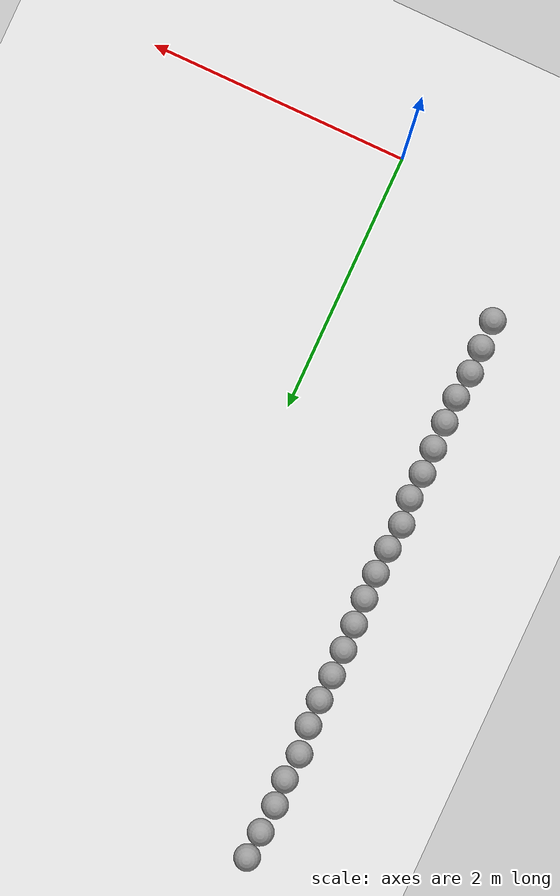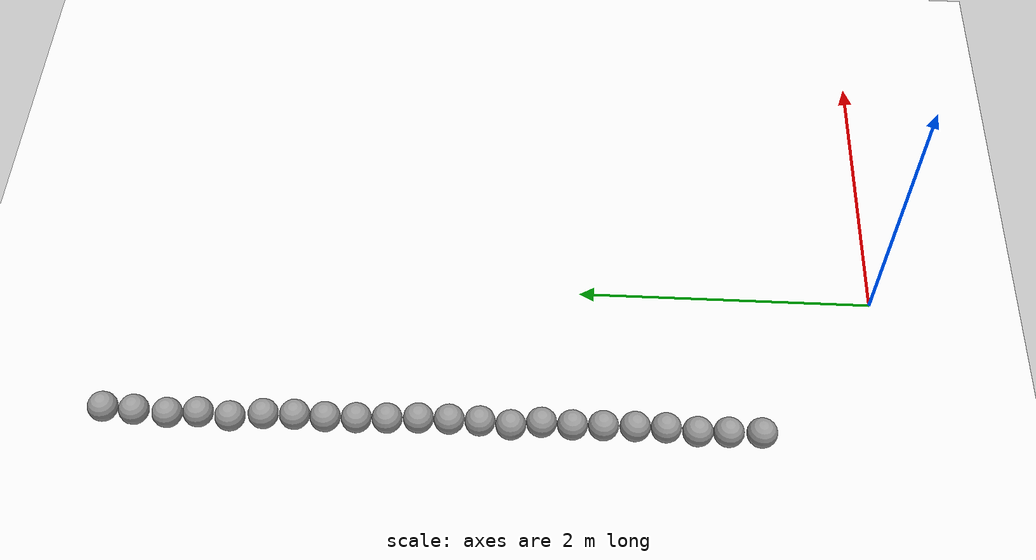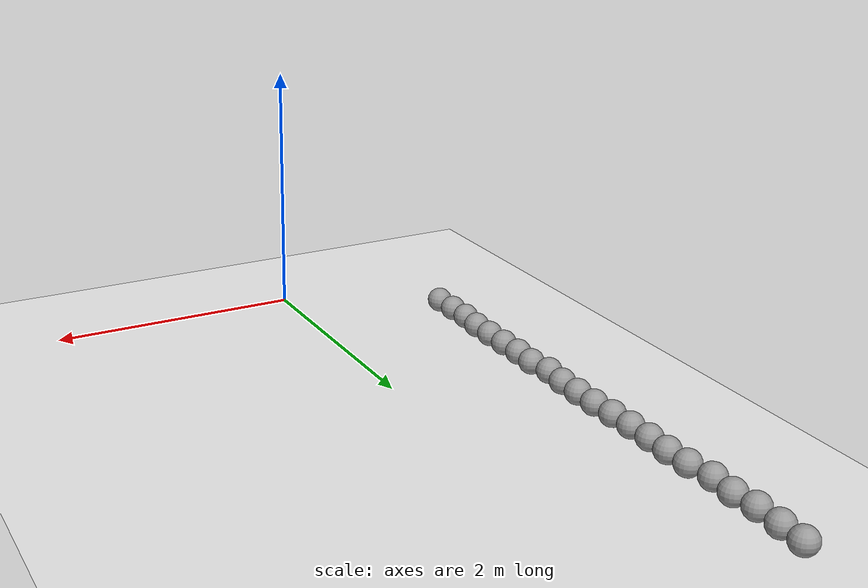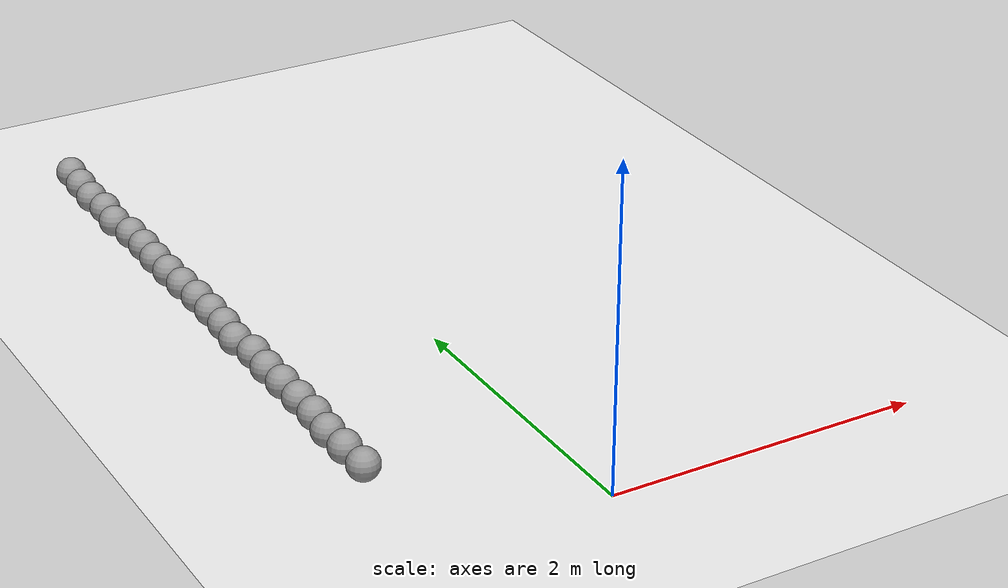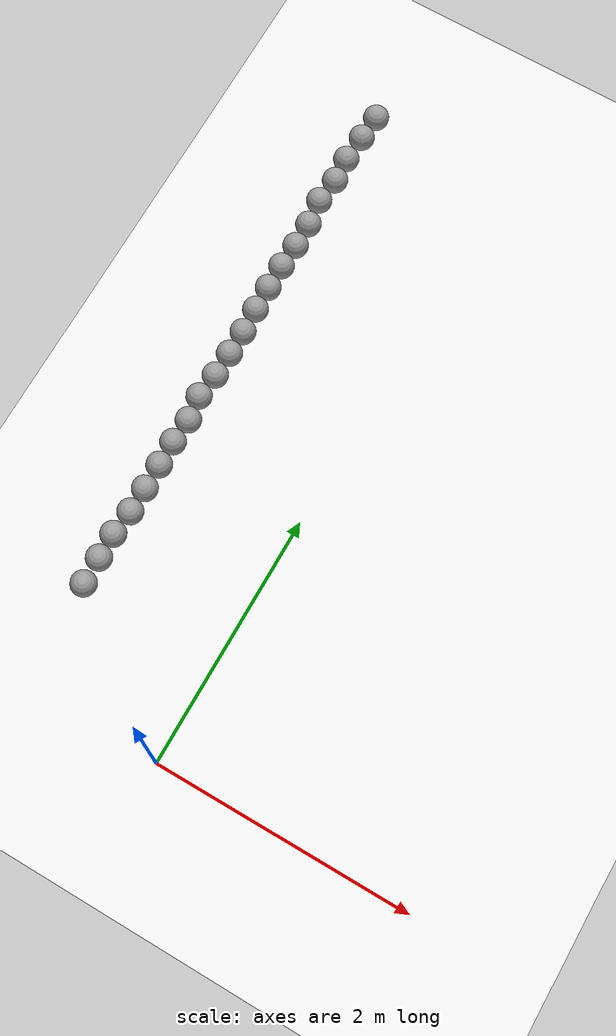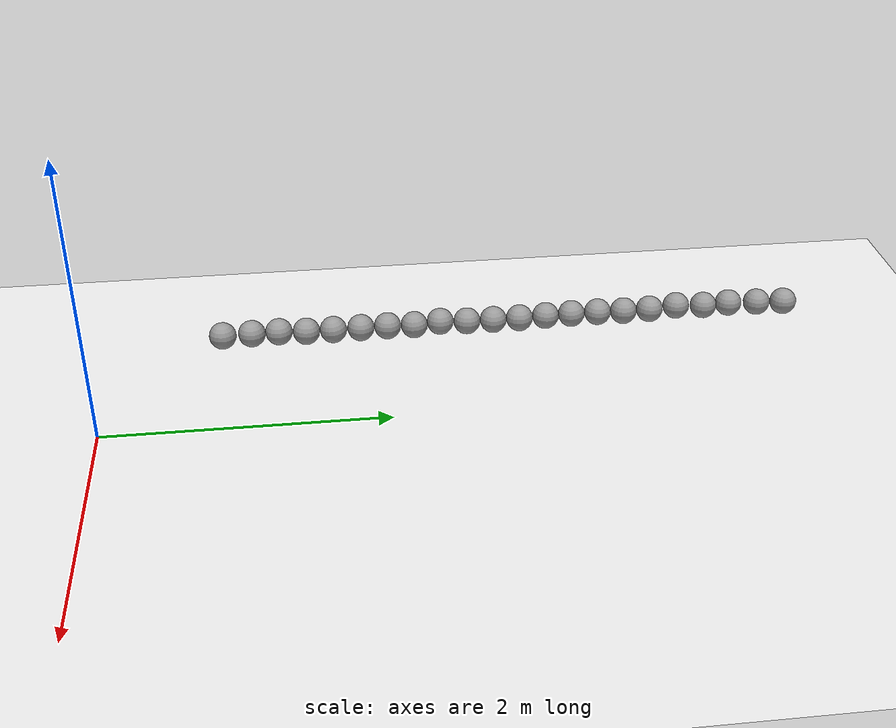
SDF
<sdf version="1.7">
 <world name="default">
  <model name="ground_plane">
   <static>1</static>
   <link name="link">
    <collision name="collision">
     <geometry><plane><normal>0 0 1</normal><size>100 100</size></plane></geometry>
     <surface>
      <contact><collide_bitmask>65535</collide_bitmask></contact>
      <friction><ode><mu>100</mu><mu2>50</mu2></ode></friction>
     </surface>
    </collision>
    <visual name="visual">
     <cast_shadows>0</cast_shadows>
     <geometry><plane><normal>0 0 1</normal><size>100 100</size></plane></geometry>
     <material>
      <script><uri>file://media/materials/scripts/gazebo.material</uri><name>Gazebo/White</name></script>
     </material>
    </visual>
   </link>
  </model>
  <model name="sphere_3">
   <link name="link_0">
    <inertial>
     <mass>1</mass>
     <inertia><ixx>0.1</ixx><ixy>0</ixy><ixz>0</ixz><iyy>0.1</iyy><iyz>0</iyz><izz>0.1</izz></inertia>
    </inertial>
    <visual name="visual">
     <geometry><sphere><radius>0.1</radius></sphere></geometry>
     <material>
      <lighting>1</lighting>
      <script><uri>file://media/materials/scripts/gazebo.material</uri><name>Gazebo/Grey</name></script>
      <shader type="pixel"><normal_map>__default__</normal_map></shader>
      <ambient>0.3 0.3 0.3 1</ambient>
      <diffuse>0.7 0.7 0.7 1</diffuse>
      <specular>0.01 0.01 0.01 1</specular>
      <emissive>0 0 0 1</emissive>
     </material>
    </visual>
    <collision name="collision">
     <geometry><sphere><radius>0.1</radius></sphere></geometry>
     <surface>
      <friction>
       <ode><mu>1</mu><mu2>1</mu2><fdir1>0 0 0</fdir1><slip1>0</slip1><slip2>0</slip2></ode>
       <torsional>
        <coefficient>1</coefficient>
        <patch_radius>0</patch_radius>
        <surface_radius>0</surface_radius>
        <use_patch_radius>1</use_patch_radius>
        <ode><slip>0</slip></ode>
       </torsional>
      </friction>
      <bounce><restitution_coefficient>0</restitution_coefficient><threshold>1e+06</threshold></bounce>
      <contact>
       <collide_without_contact>0</collide_without_contact>
       <collide_without_contact_bitmask>1</collide_without_contact_bitmask>
       <collide_bitmask>1</collide_bitmask>
       <ode>
        <soft_cfm>0</soft_cfm>
        <soft_erp>0.2</soft_erp>
        <kp>1e+13</kp>
        <kd>1</kd>
        <max_vel>0.01</max_vel>
        <min_depth>0</min_depth>
       </ode>
       <bullet>
        <split_impulse>1</split_impulse>
        <split_impulse_penetration_threshold>-0.01</split_impulse_penetration_threshold>
        <soft_cfm>0</soft_cfm>
        <soft_erp>0.2</soft_erp>
        <kp>1e+13</kp>
        <kd>1</kd>
       </bullet>
      </contact>
     </surface>
    </collision>
   </link>
   <static>0</static>
   <pose>-1.0912 0.811371 0.1 0 -0 0</pose>
  </model>
  <model name="sphere_4">
   <link name="link_0">
    <inertial>
     <mass>1</mass>
     <inertia><ixx>0.1</ixx><ixy>0</ixy><ixz>0</ixz><iyy>0.1</iyy><iyz>0</iyz><izz>0.1</izz></inertia>
    </inertial>
    <visual name="visual">
     <geometry><sphere><radius>0.1</radius></sphere></geometry>
     <material>
      <lighting>1</lighting>
      <script><uri>file://media/materials/scripts/gazebo.material</uri><name>Gazebo/Grey</name></script>
      <shader type="pixel"><normal_map>__default__</normal_map></shader>
      <ambient>0.3 0.3 0.3 1</ambient>
      <diffuse>0.7 0.7 0.7 1</diffuse>
      <specular>0.01 0.01 0.01 1</specular>
      <emissive>0 0 0 1</emissive>
     </material>
    </visual>
    <collision name="collision">
     <geometry><sphere><radius>0.1</radius></sphere></geometry>
     <surface>
      <friction>
       <ode><mu>1</mu><mu2>1</mu2><fdir1>0 0 0</fdir1><slip1>0</slip1><slip2>0</slip2></ode>
       <torsional>
        <coefficient>1</coefficient>
        <patch_radius>0</patch_radius>
        <surface_radius>0</surface_radius>
        <use_patch_radius>1</use_patch_radius>
        <ode><slip>0</slip></ode>
       </torsional>
      </friction>
      <bounce><restitution_coefficient>0</restitution_coefficient><threshold>1e+06</threshold></bounce>
      <contact>
       <collide_without_contact>0</collide_without_contact>
       <collide_without_contact_bitmask>1</collide_without_contact_bitmask>
       <collide_bitmask>1</collide_bitmask>
       <ode>
        <soft_cfm>0</soft_cfm>
        <soft_erp>0.2</soft_erp>
        <kp>1e+13</kp>
        <kd>1</kd>
        <max_vel>0.01</max_vel>
        <min_depth>0</min_depth>
       </ode>
       <bullet>
        <split_impulse>1</split_impulse>
        <split_impulse_penetration_threshold>-0.01</split_impulse_penetration_threshold>
        <soft_cfm>0</soft_cfm>
        <soft_erp>0.2</soft_erp>
        <kp>1e+13</kp>
        <kd>1</kd>
       </bullet>
      </contact>
     </surface>
    </collision>
   </link>
   <static>0</static>
   <pose>-1.09687 1.02525 0.1 0.000955 -0.000196 0.000241</pose>
  </model>
  <model name="sphere_5">
   <link name="link_0">
    <inertial>
     <mass>1</mass>
     <inertia><ixx>0.1</ixx><ixy>0</ixy><ixz>0</ixz><iyy>0.1</iyy><iyz>0</iyz><izz>0.1</izz></inertia>
    </inertial>
    <visual name="visual">
     <geometry><sphere><radius>0.1</radius></sphere></geometry>
     <material>
      <lighting>1</lighting>
      <script><uri>file://media/materials/scripts/gazebo.material</uri><name>Gazebo/Grey</name></script>
      <shader type="pixel"><normal_map>__default__</normal_map></shader>
      <ambient>0.3 0.3 0.3 1</ambient>
      <diffuse>0.7 0.7 0.7 1</diffuse>
      <specular>0.01 0.01 0.01 1</specular>
      <emissive>0 0 0 1</emissive>
     </material>
    </visual>
    <collision name="collision">
     <geometry><sphere><radius>0.1</radius></sphere></geometry>
     <surface>
      <friction>
       <ode><mu>1</mu><mu2>1</mu2><fdir1>0 0 0</fdir1><slip1>0</slip1><slip2>0</slip2></ode>
       <torsional>
        <coefficient>1</coefficient>
        <patch_radius>0</patch_radius>
        <surface_radius>0</surface_radius>
        <use_patch_radius>1</use_patch_radius>
        <ode><slip>0</slip></ode>
       </torsional>
      </friction>
      <bounce><restitution_coefficient>0</restitution_coefficient><threshold>1e+06</threshold></bounce>
      <contact>
       <collide_without_contact>0</collide_without_contact>
       <collide_without_contact_bitmask>1</collide_without_contact_bitmask>
       <collide_bitmask>1</collide_bitmask>
       <ode>
        <soft_cfm>0</soft_cfm>
        <soft_erp>0.2</soft_erp>
        <kp>1e+13</kp>
        <kd>1</kd>
        <max_vel>0.01</max_vel>
        <min_depth>0</min_depth>
       </ode>
       <bullet>
        <split_impulse>1</split_impulse>
        <split_impulse_penetration_threshold>-0.01</split_impulse_penetration_threshold>
        <soft_cfm>0</soft_cfm>
        <soft_erp>0.2</soft_erp>
        <kp>1e+13</kp>
        <kd>1</kd>
       </bullet>
      </contact>
     </surface>
    </collision>
   </link>
   <static>0</static>
   <pose>-1.10184 1.22526 0.1 0.026409 -0.003889 0.001047</pose>
  </model>
  <model name="sphere_6">
   <link name="link_0">
    <inertial>
     <mass>1</mass>
     <inertia><ixx>0.1</ixx><ixy>0</ixy><ixz>0</ixz><iyy>0.1</iyy><iyz>0</iyz><izz>0.1</izz></inertia>
    </inertial>
    <visual name="visual">
     <geometry><sphere><radius>0.1</radius></sphere></geometry>
     <material>
      <lighting>1</lighting>
      <script><uri>file://media/materials/scripts/gazebo.material</uri><name>Gazebo/Grey</name></script>
      <shader type="pixel"><normal_map>__default__</normal_map></shader>
      <ambient>0.3 0.3 0.3 1</ambient>
      <diffuse>0.7 0.7 0.7 1</diffuse>
      <specular>0.01 0.01 0.01 1</specular>
      <emissive>0 0 0 1</emissive>
     </material>
    </visual>
    <collision name="collision">
     <geometry><sphere><radius>0.1</radius></sphere></geometry>
     <surface>
      <friction>
       <ode><mu>1</mu><mu2>1</mu2><fdir1>0 0 0</fdir1><slip1>0</slip1><slip2>0</slip2></ode>
       <torsional>
        <coefficient>1</coefficient>
        <patch_radius>0</patch_radius>
        <surface_radius>0</surface_radius>
        <use_patch_radius>1</use_patch_radius>
        <ode><slip>0</slip></ode>
       </torsional>
      </friction>
      <bounce><restitution_coefficient>0</restitution_coefficient><threshold>1e+06</threshold></bounce>
      <contact>
       <collide_without_contact>0</collide_without_contact>
       <collide_without_contact_bitmask>1</collide_without_contact_bitmask>
       <collide_bitmask>1</collide_bitmask>
       <ode>
        <soft_cfm>0</soft_cfm>
        <soft_erp>0.2</soft_erp>
        <kp>1e+13</kp>
        <kd>1</kd>
        <max_vel>0.01</max_vel>
        <min_depth>0</min_depth>
       </ode>
       <bullet>
        <split_impulse>1</split_impulse>
        <split_impulse_penetration_threshold>-0.01</split_impulse_penetration_threshold>
        <soft_cfm>0</soft_cfm>
        <soft_erp>0.2</soft_erp>
        <kp>1e+13</kp>
        <kd>1</kd>
       </bullet>
      </contact>
     </surface>
    </collision>
   </link>
   <static>0</static>
   <pose>-1.08366 1.42822 0.1 -0.035577 0.004267 0.000847</pose>
  </model>
  <model name="sphere_7">
   <link name="link_0">
    <inertial>
     <mass>1</mass>
     <inertia><ixx>0.1</ixx><ixy>0</ixy><ixz>0</ixz><iyy>0.1</iyy><iyz>0</iyz><izz>0.1</izz></inertia>
    </inertial>
    <visual name="visual">
     <geometry><sphere><radius>0.1</radius></sphere></geometry>
     <material>
      <lighting>1</lighting>
      <script><uri>file://media/materials/scripts/gazebo.material</uri><name>Gazebo/Grey</name></script>
      <shader type="pixel"><normal_map>__default__</normal_map></shader>
      <ambient>0.3 0.3 0.3 1</ambient>
      <diffuse>0.7 0.7 0.7 1</diffuse>
      <specular>0.01 0.01 0.01 1</specular>
      <emissive>0 0 0 1</emissive>
     </material>
    </visual>
    <collision name="collision">
     <geometry><sphere><radius>0.1</radius></sphere></geometry>
     <surface>
      <friction>
       <ode><mu>1</mu><mu2>1</mu2><fdir1>0 0 0</fdir1><slip1>0</slip1><slip2>0</slip2></ode>
       <torsional>
        <coefficient>1</coefficient>
        <patch_radius>0</patch_radius>
        <surface_radius>0</surface_radius>
        <use_patch_radius>1</use_patch_radius>
        <ode><slip>0</slip></ode>
       </torsional>
      </friction>
      <bounce><restitution_coefficient>0</restitution_coefficient><threshold>1e+06</threshold></bounce>
      <contact>
       <collide_without_contact>0</collide_without_contact>
       <collide_without_contact_bitmask>1</collide_without_contact_bitmask>
       <collide_bitmask>1</collide_bitmask>
       <ode>
        <soft_cfm>0</soft_cfm>
        <soft_erp>0.2</soft_erp>
        <kp>1e+13</kp>
        <kd>1</kd>
        <max_vel>0.01</max_vel>
        <min_depth>0</min_depth>
       </ode>
       <bullet>
        <split_impulse>1</split_impulse>
        <split_impulse_penetration_threshold>-0.01</split_impulse_penetration_threshold>
        <soft_cfm>0</soft_cfm>
        <soft_erp>0.2</soft_erp>
        <kp>1e+13</kp>
        <kd>1</kd>
       </bullet>
      </contact>
     </surface>
    </collision>
   </link>
   <static>0</static>
   <pose>-1.08447 1.62822 0.1 0.105529 0.002076 0.000151</pose>
  </model>
  <model name="sphere_13">
   <link name="link_0">
    <inertial>
     <mass>1</mass>
     <inertia><ixx>0.1</ixx><ixy>0</ixy><ixz>0</ixz><iyy>0.1</iyy><iyz>0</iyz><izz>0.1</izz></inertia>
    </inertial>
    <visual name="visual">
     <geometry><sphere><radius>0.1</radius></sphere></geometry>
     <material>
      <lighting>1</lighting>
      <script><uri>file://media/materials/scripts/gazebo.material</uri><name>Gazebo/Grey</name></script>
      <shader type="pixel"><normal_map>__default__</normal_map></shader>
      <ambient>0.3 0.3 0.3 1</ambient>
      <diffuse>0.7 0.7 0.7 1</diffuse>
      <specular>0.01 0.01 0.01 1</specular>
      <emissive>0 0 0 1</emissive>
     </material>
    </visual>
    <collision name="collision">
     <geometry><sphere><radius>0.1</radius></sphere></geometry>
     <surface>
      <friction>
       <ode><mu>1</mu><mu2>1</mu2><fdir1>0 0 0</fdir1><slip1>0</slip1><slip2>0</slip2></ode>
       <torsional>
        <coefficient>1</coefficient>
        <patch_radius>0</patch_radius>
        <surface_radius>0</surface_radius>
        <use_patch_radius>1</use_patch_radius>
        <ode><slip>0</slip></ode>
       </torsional>
      </friction>
      <bounce><restitution_coefficient>0</restitution_coefficient><threshold>1e+06</threshold></bounce>
      <contact>
       <collide_without_contact>0</collide_without_contact>
       <collide_without_contact_bitmask>1</collide_without_contact_bitmask>
       <collide_bitmask>1</collide_bitmask>
       <ode>
        <soft_cfm>0</soft_cfm>
        <soft_erp>0.2</soft_erp>
        <kp>1e+13</kp>
        <kd>1</kd>
        <max_vel>0.01</max_vel>
        <min_depth>0</min_depth>
       </ode>
       <bullet>
        <split_impulse>1</split_impulse>
        <split_impulse_penetration_threshold>-0.01</split_impulse_penetration_threshold>
        <soft_cfm>0</soft_cfm>
        <soft_erp>0.2</soft_erp>
        <kp>1e+13</kp>
        <kd>1</kd>
       </bullet>
      </contact>
     </surface>
    </collision>
   </link>
   <static>0</static>
   <pose>-1.08795 1.8335 0.1 -0.013985 -0.000756 0.00343</pose>
  </model>
  <model name="sphere_14">
   <link name="link_0">
    <inertial>
     <mass>1</mass>
     <inertia><ixx>0.1</ixx><ixy>0</ixy><ixz>0</ixz><iyy>0.1</iyy><iyz>0</iyz><izz>0.1</izz></inertia>
    </inertial>
    <visual name="visual">
     <geometry><sphere><radius>0.1</radius></sphere></geometry>
     <material>
      <lighting>1</lighting>
      <script><uri>file://media/materials/scripts/gazebo.material</uri><name>Gazebo/Grey</name></script>
      <shader type="pixel"><normal_map>__default__</normal_map></shader>
      <ambient>0.3 0.3 0.3 1</ambient>
      <diffuse>0.7 0.7 0.7 1</diffuse>
      <specular>0.01 0.01 0.01 1</specular>
      <emissive>0 0 0 1</emissive>
     </material>
    </visual>
    <collision name="collision">
     <geometry><sphere><radius>0.1</radius></sphere></geometry>
     <surface>
      <friction>
       <ode><mu>1</mu><mu2>1</mu2><fdir1>0 0 0</fdir1><slip1>0</slip1><slip2>0</slip2></ode>
       <torsional>
        <coefficient>1</coefficient>
        <patch_radius>0</patch_radius>
        <surface_radius>0</surface_radius>
        <use_patch_radius>1</use_patch_radius>
        <ode><slip>0</slip></ode>
       </torsional>
      </friction>
      <bounce><restitution_coefficient>0</restitution_coefficient><threshold>1e+06</threshold></bounce>
      <contact>
       <collide_without_contact>0</collide_without_contact>
       <collide_without_contact_bitmask>1</collide_without_contact_bitmask>
       <collide_bitmask>1</collide_bitmask>
       <ode>
        <soft_cfm>0</soft_cfm>
        <soft_erp>0.2</soft_erp>
        <kp>1e+13</kp>
        <kd>1</kd>
        <max_vel>0.01</max_vel>
        <min_depth>0</min_depth>
       </ode>
       <bullet>
        <split_impulse>1</split_impulse>
        <split_impulse_penetration_threshold>-0.01</split_impulse_penetration_threshold>
        <soft_cfm>0</soft_cfm>
        <soft_erp>0.2</soft_erp>
        <kp>1e+13</kp>
        <kd>1</kd>
       </bullet>
      </contact>
     </surface>
    </collision>
   </link>
   <static>0</static>
   <pose>-1.09217 2.0335 0.1 -0.017404 0.006908 -0.012333</pose>
  </model>
  <model name="sphere_15">
   <link name="link_0">
    <inertial>
     <mass>1</mass>
     <inertia><ixx>0.1</ixx><ixy>0</ixy><ixz>0</ixz><iyy>0.1</iyy><iyz>0</iyz><izz>0.1</izz></inertia>
    </inertial>
    <visual name="visual">
     <geometry><sphere><radius>0.1</radius></sphere></geometry>
     <material>
      <lighting>1</lighting>
      <script><uri>file://media/materials/scripts/gazebo.material</uri><name>Gazebo/Grey</name></script>
      <shader type="pixel"><normal_map>__default__</normal_map></shader>
      <ambient>0.3 0.3 0.3 1</ambient>
      <diffuse>0.7 0.7 0.7 1</diffuse>
      <specular>0.01 0.01 0.01 1</specular>
      <emissive>0 0 0 1</emissive>
     </material>
    </visual>
    <collision name="collision">
     <geometry><sphere><radius>0.1</radius></sphere></geometry>
     <surface>
      <friction>
       <ode><mu>1</mu><mu2>1</mu2><fdir1>0 0 0</fdir1><slip1>0</slip1><slip2>0</slip2></ode>
       <torsional>
        <coefficient>1</coefficient>
        <patch_radius>0</patch_radius>
        <surface_radius>0</surface_radius>
        <use_patch_radius>1</use_patch_radius>
        <ode><slip>0</slip></ode>
       </torsional>
      </friction>
      <bounce><restitution_coefficient>0</restitution_coefficient><threshold>1e+06</threshold></bounce>
      <contact>
       <collide_without_contact>0</collide_without_contact>
       <collide_without_contact_bitmask>1</collide_without_contact_bitmask>
       <collide_bitmask>1</collide_bitmask>
       <ode>
        <soft_cfm>0</soft_cfm>
        <soft_erp>0.2</soft_erp>
        <kp>1e+13</kp>
        <kd>1</kd>
        <max_vel>0.01</max_vel>
        <min_depth>0</min_depth>
       </ode>
       <bullet>
        <split_impulse>1</split_impulse>
        <split_impulse_penetration_threshold>-0.01</split_impulse_penetration_threshold>
        <soft_cfm>0</soft_cfm>
        <soft_erp>0.2</soft_erp>
        <kp>1e+13</kp>
        <kd>1</kd>
       </bullet>
      </contact>
     </surface>
    </collision>
   </link>
   <static>0</static>
   <pose>-1.083 2.23368 0.1 0.041311 -0.006088 0.058383</pose>
  </model>
  <model name="sphere_16">
   <link name="link_0">
    <inertial>
     <mass>1</mass>
     <inertia><ixx>0.1</ixx><ixy>0</ixy><ixz>0</ixz><iyy>0.1</iyy><iyz>0</iyz><izz>0.1</izz></inertia>
    </inertial>
    <visual name="visual">
     <geometry><sphere><radius>0.1</radius></sphere></geometry>
     <material>
      <lighting>1</lighting>
      <script><uri>file://media/materials/scripts/gazebo.material</uri><name>Gazebo/Grey</name></script>
      <shader type="pixel"><normal_map>__default__</normal_map></shader>
      <ambient>0.3 0.3 0.3 1</ambient>
      <diffuse>0.7 0.7 0.7 1</diffuse>
      <specular>0.01 0.01 0.01 1</specular>
      <emissive>0 0 0 1</emissive>
     </material>
    </visual>
    <collision name="collision">
     <geometry><sphere><radius>0.1</radius></sphere></geometry>
     <surface>
      <friction>
       <ode><mu>1</mu><mu2>1</mu2><fdir1>0 0 0</fdir1><slip1>0</slip1><slip2>0</slip2></ode>
       <torsional>
        <coefficient>1</coefficient>
        <patch_radius>0</patch_radius>
        <surface_radius>0</surface_radius>
        <use_patch_radius>1</use_patch_radius>
        <ode><slip>0</slip></ode>
       </torsional>
      </friction>
      <bounce><restitution_coefficient>0</restitution_coefficient><threshold>1e+06</threshold></bounce>
      <contact>
       <collide_without_contact>0</collide_without_contact>
       <collide_without_contact_bitmask>1</collide_without_contact_bitmask>
       <collide_bitmask>1</collide_bitmask>
       <ode>
        <soft_cfm>0</soft_cfm>
        <soft_erp>0.2</soft_erp>
        <kp>1e+13</kp>
        <kd>1</kd>
        <max_vel>0.01</max_vel>
        <min_depth>0</min_depth>
       </ode>
       <bullet>
        <split_impulse>1</split_impulse>
        <split_impulse_penetration_threshold>-0.01</split_impulse_penetration_threshold>
        <soft_cfm>0</soft_cfm>
        <soft_erp>0.2</soft_erp>
        <kp>1e+13</kp>
        <kd>1</kd>
       </bullet>
      </contact>
     </surface>
    </collision>
   </link>
   <static>0</static>
   <pose>-1.11071 2.43199 0.1 -0.003908 -0.0843 0.008809</pose>
  </model>
  <model name="sphere_17">
   <link name="link_0">
    <inertial>
     <mass>1</mass>
     <inertia><ixx>0.1</ixx><ixy>0</ixy><ixz>0</ixz><iyy>0.1</iyy><iyz>0</iyz><izz>0.1</izz></inertia>
    </inertial>
    <visual name="visual">
     <geometry><sphere><radius>0.1</radius></sphere></geometry>
     <material>
      <lighting>1</lighting>
      <script><uri>file://media/materials/scripts/gazebo.material</uri><name>Gazebo/Grey</name></script>
      <shader type="pixel"><normal_map>__default__</normal_map></shader>
      <ambient>0.3 0.3 0.3 1</ambient>
      <diffuse>0.7 0.7 0.7 1</diffuse>
      <specular>0.01 0.01 0.01 1</specular>
      <emissive>0 0 0 1</emissive>
     </material>
    </visual>
    <collision name="collision">
     <geometry><sphere><radius>0.1</radius></sphere></geometry>
     <surface>
      <friction>
       <ode><mu>1</mu><mu2>1</mu2><fdir1>0 0 0</fdir1><slip1>0</slip1><slip2>0</slip2></ode>
       <torsional>
        <coefficient>1</coefficient>
        <patch_radius>0</patch_radius>
        <surface_radius>0</surface_radius>
        <use_patch_radius>1</use_patch_radius>
        <ode><slip>0</slip></ode>
       </torsional>
      </friction>
      <bounce><restitution_coefficient>0</restitution_coefficient><threshold>1e+06</threshold></bounce>
      <contact>
       <collide_without_contact>0</collide_without_contact>
       <collide_without_contact_bitmask>1</collide_without_contact_bitmask>
       <collide_bitmask>1</collide_bitmask>
       <ode>
        <soft_cfm>0</soft_cfm>
        <soft_erp>0.2</soft_erp>
        <kp>1e+13</kp>
        <kd>1</kd>
        <max_vel>0.01</max_vel>
        <min_depth>0</min_depth>
       </ode>
       <bullet>
        <split_impulse>1</split_impulse>
        <split_impulse_penetration_threshold>-0.01</split_impulse_penetration_threshold>
        <soft_cfm>0</soft_cfm>
        <soft_erp>0.2</soft_erp>
        <kp>1e+13</kp>
        <kd>1</kd>
       </bullet>
      </contact>
     </surface>
    </collision>
   </link>
   <static>0</static>
   <pose>-1.09213 2.63285 0.1 -0.028769 -0.037032 -0.05648</pose>
  </model>
  <model name="sphere_18">
   <link name="link_0">
    <inertial>
     <mass>1</mass>
     <inertia><ixx>0.1</ixx><ixy>0</ixy><ixz>0</ixz><iyy>0.1</iyy><iyz>0</iyz><izz>0.1</izz></inertia>
    </inertial>
    <visual name="visual">
     <geometry><sphere><radius>0.1</radius></sphere></geometry>
     <material>
      <lighting>1</lighting>
      <script><uri>file://media/materials/scripts/gazebo.material</uri><name>Gazebo/Grey</name></script>
      <shader type="pixel"><normal_map>__default__</normal_map></shader>
      <ambient>0.3 0.3 0.3 1</ambient>
      <diffuse>0.7 0.7 0.7 1</diffuse>
      <specular>0.01 0.01 0.01 1</specular>
      <emissive>0 0 0 1</emissive>
     </material>
    </visual>
    <collision name="collision">
     <geometry><sphere><radius>0.1</radius></sphere></geometry>
     <surface>
      <friction>
       <ode><mu>1</mu><mu2>1</mu2><fdir1>0 0 0</fdir1><slip1>0</slip1><slip2>0</slip2></ode>
       <torsional>
        <coefficient>1</coefficient>
        <patch_radius>0</patch_radius>
        <surface_radius>0</surface_radius>
        <use_patch_radius>1</use_patch_radius>
        <ode><slip>0</slip></ode>
       </torsional>
      </friction>
      <bounce><restitution_coefficient>0</restitution_coefficient><threshold>1e+06</threshold></bounce>
      <contact>
       <collide_without_contact>0</collide_without_contact>
       <collide_without_contact_bitmask>1</collide_without_contact_bitmask>
       <collide_bitmask>1</collide_bitmask>
       <ode>
        <soft_cfm>0</soft_cfm>
        <soft_erp>0.2</soft_erp>
        <kp>1e+13</kp>
        <kd>1</kd>
        <max_vel>0.01</max_vel>
        <min_depth>0</min_depth>
       </ode>
       <bullet>
        <split_impulse>1</split_impulse>
        <split_impulse_penetration_threshold>-0.01</split_impulse_penetration_threshold>
        <soft_cfm>0</soft_cfm>
        <soft_erp>0.2</soft_erp>
        <kp>1e+13</kp>
        <kd>1</kd>
       </bullet>
      </contact>
     </surface>
    </collision>
   </link>
   <static>0</static>
   <pose>-1.089 2.83286 0.1 -0.012785 0.006707 0.006769</pose>
  </model>
  <model name="sphere_19">
   <link name="link_0">
    <inertial>
     <mass>1</mass>
     <inertia><ixx>0.1</ixx><ixy>0</ixy><ixz>0</ixz><iyy>0.1</iyy><iyz>0</iyz><izz>0.1</izz></inertia>
    </inertial>
    <visual name="visual">
     <geometry><sphere><radius>0.1</radius></sphere></geometry>
     <material>
      <lighting>1</lighting>
      <script><uri>file://media/materials/scripts/gazebo.material</uri><name>Gazebo/Grey</name></script>
      <shader type="pixel"><normal_map>__default__</normal_map></shader>
      <ambient>0.3 0.3 0.3 1</ambient>
      <diffuse>0.7 0.7 0.7 1</diffuse>
      <specular>0.01 0.01 0.01 1</specular>
      <emissive>0 0 0 1</emissive>
     </material>
    </visual>
    <collision name="collision">
     <geometry><sphere><radius>0.1</radius></sphere></geometry>
     <surface>
      <friction>
       <ode><mu>1</mu><mu2>1</mu2><fdir1>0 0 0</fdir1><slip1>0</slip1><slip2>0</slip2></ode>
       <torsional>
        <coefficient>1</coefficient>
        <patch_radius>0</patch_radius>
        <surface_radius>0</surface_radius>
        <use_patch_radius>1</use_patch_radius>
        <ode><slip>0</slip></ode>
       </torsional>
      </friction>
      <bounce><restitution_coefficient>0</restitution_coefficient><threshold>1e+06</threshold></bounce>
      <contact>
       <collide_without_contact>0</collide_without_contact>
       <collide_without_contact_bitmask>1</collide_without_contact_bitmask>
       <collide_bitmask>1</collide_bitmask>
       <ode>
        <soft_cfm>0</soft_cfm>
        <soft_erp>0.2</soft_erp>
        <kp>1e+13</kp>
        <kd>1</kd>
        <max_vel>0.01</max_vel>
        <min_depth>0</min_depth>
       </ode>
       <bullet>
        <split_impulse>1</split_impulse>
        <split_impulse_penetration_threshold>-0.01</split_impulse_penetration_threshold>
        <soft_cfm>0</soft_cfm>
        <soft_erp>0.2</soft_erp>
        <kp>1e+13</kp>
        <kd>1</kd>
       </bullet>
      </contact>
     </surface>
    </collision>
   </link>
   <static>0</static>
   <pose>-1.08991 3.0329 0.1 0.029766 0.002684 -0.000943</pose>
  </model>
  <model name="sphere_20">
   <link name="link_0">
    <inertial>
     <mass>1</mass>
     <inertia><ixx>0.1</ixx><ixy>0</ixy><ixz>0</ixz><iyy>0.1</iyy><iyz>0</iyz><izz>0.1</izz></inertia>
    </inertial>
    <visual name="visual">
     <geometry><sphere><radius>0.1</radius></sphere></geometry>
     <material>
      <lighting>1</lighting>
      <script><uri>file://media/materials/scripts/gazebo.material</uri><name>Gazebo/Grey</name></script>
      <shader type="pixel"><normal_map>__default__</normal_map></shader>
      <ambient>0.3 0.3 0.3 1</ambient>
      <diffuse>0.7 0.7 0.7 1</diffuse>
      <specular>0.01 0.01 0.01 1</specular>
      <emissive>0 0 0 1</emissive>
     </material>
    </visual>
    <collision name="collision">
     <geometry><sphere><radius>0.1</radius></sphere></geometry>
     <surface>
      <friction>
       <ode><mu>1</mu><mu2>1</mu2><fdir1>0 0 0</fdir1><slip1>0</slip1><slip2>0</slip2></ode>
       <torsional>
        <coefficient>1</coefficient>
        <patch_radius>0</patch_radius>
        <surface_radius>0</surface_radius>
        <use_patch_radius>1</use_patch_radius>
        <ode><slip>0</slip></ode>
       </torsional>
      </friction>
      <bounce><restitution_coefficient>0</restitution_coefficient><threshold>1e+06</threshold></bounce>
      <contact>
       <collide_without_contact>0</collide_without_contact>
       <collide_without_contact_bitmask>1</collide_without_contact_bitmask>
       <collide_bitmask>1</collide_bitmask>
       <ode>
        <soft_cfm>0</soft_cfm>
        <soft_erp>0.2</soft_erp>
        <kp>1e+13</kp>
        <kd>1</kd>
        <max_vel>0.01</max_vel>
        <min_depth>0</min_depth>
       </ode>
       <bullet>
        <split_impulse>1</split_impulse>
        <split_impulse_penetration_threshold>-0.01</split_impulse_penetration_threshold>
        <soft_cfm>0</soft_cfm>
        <soft_erp>0.2</soft_erp>
        <kp>1e+13</kp>
        <kd>1</kd>
       </bullet>
      </contact>
     </surface>
    </collision>
   </link>
   <static>0</static>
   <pose>-1.10088 3.23515 0.1 -0.04817 -0.003177 -0.000442</pose>
  </model>
  <model name="sphere_21">
   <link name="link_0">
    <inertial>
     <mass>1</mass>
     <inertia><ixx>0.1</ixx><ixy>0</ixy><ixz>0</ixz><iyy>0.1</iyy><iyz>0</iyz><izz>0.1</izz></inertia>
    </inertial>
    <visual name="visual">
     <geometry><sphere><radius>0.1</radius></sphere></geometry>
     <material>
      <lighting>1</lighting>
      <script><uri>file://media/materials/scripts/gazebo.material</uri><name>Gazebo/Grey</name></script>
      <shader type="pixel"><normal_map>__default__</normal_map></shader>
      <ambient>0.3 0.3 0.3 1</ambient>
      <diffuse>0.7 0.7 0.7 1</diffuse>
      <specular>0.01 0.01 0.01 1</specular>
      <emissive>0 0 0 1</emissive>
     </material>
    </visual>
    <collision name="collision">
     <geometry><sphere><radius>0.1</radius></sphere></geometry>
     <surface>
      <friction>
       <ode><mu>1</mu><mu2>1</mu2><fdir1>0 0 0</fdir1><slip1>0</slip1><slip2>0</slip2></ode>
       <torsional>
        <coefficient>1</coefficient>
        <patch_radius>0</patch_radius>
        <surface_radius>0</surface_radius>
        <use_patch_radius>1</use_patch_radius>
        <ode><slip>0</slip></ode>
       </torsional>
      </friction>
      <bounce><restitution_coefficient>0</restitution_coefficient><threshold>1e+06</threshold></bounce>
      <contact>
       <collide_without_contact>0</collide_without_contact>
       <collide_without_contact_bitmask>1</collide_without_contact_bitmask>
       <collide_bitmask>1</collide_bitmask>
       <ode>
        <soft_cfm>0</soft_cfm>
        <soft_erp>0.2</soft_erp>
        <kp>1e+13</kp>
        <kd>1</kd>
        <max_vel>0.01</max_vel>
        <min_depth>0</min_depth>
       </ode>
       <bullet>
        <split_impulse>1</split_impulse>
        <split_impulse_penetration_threshold>-0.01</split_impulse_penetration_threshold>
        <soft_cfm>0</soft_cfm>
        <soft_erp>0.2</soft_erp>
        <kp>1e+13</kp>
        <kd>1</kd>
       </bullet>
      </contact>
     </surface>
    </collision>
   </link>
   <static>0</static>
   <pose>-1.10765 3.43504 0.1 0.054121 -9.6e-05 0.000598</pose>
  </model>
  <model name="sphere_22">
   <link name="link_0">
    <inertial>
     <mass>1</mass>
     <inertia><ixx>0.1</ixx><ixy>0</ixy><ixz>0</ixz><iyy>0.1</iyy><iyz>0</iyz><izz>0.1</izz></inertia>
    </inertial>
    <visual name="visual">
     <geometry><sphere><radius>0.1</radius></sphere></geometry>
     <material>
      <lighting>1</lighting>
      <script><uri>file://media/materials/scripts/gazebo.material</uri><name>Gazebo/Grey</name></script>
      <shader type="pixel"><normal_map>__default__</normal_map></shader>
      <ambient>0.3 0.3 0.3 1</ambient>
      <diffuse>0.7 0.7 0.7 1</diffuse>
      <specular>0.01 0.01 0.01 1</specular>
      <emissive>0 0 0 1</emissive>
     </material>
    </visual>
    <collision name="collision">
     <geometry><sphere><radius>0.1</radius></sphere></geometry>
     <surface>
      <friction>
       <ode><mu>1</mu><mu2>1</mu2><fdir1>0 0 0</fdir1><slip1>0</slip1><slip2>0</slip2></ode>
       <torsional>
        <coefficient>1</coefficient>
        <patch_radius>0</patch_radius>
        <surface_radius>0</surface_radius>
        <use_patch_radius>1</use_patch_radius>
        <ode><slip>0</slip></ode>
       </torsional>
      </friction>
      <bounce><restitution_coefficient>0</restitution_coefficient><threshold>1e+06</threshold></bounce>
      <contact>
       <collide_without_contact>0</collide_without_contact>
       <collide_without_contact_bitmask>1</collide_without_contact_bitmask>
       <collide_bitmask>1</collide_bitmask>
       <ode>
        <soft_cfm>0</soft_cfm>
        <soft_erp>0.2</soft_erp>
        <kp>1e+13</kp>
        <kd>1</kd>
        <max_vel>0.01</max_vel>
        <min_depth>0</min_depth>
       </ode>
       <bullet>
        <split_impulse>1</split_impulse>
        <split_impulse_penetration_threshold>-0.01</split_impulse_penetration_threshold>
        <soft_cfm>0</soft_cfm>
        <soft_erp>0.2</soft_erp>
        <kp>1e+13</kp>
        <kd>1</kd>
       </bullet>
      </contact>
     </surface>
    </collision>
   </link>
   <static>0</static>
   <pose>-1.10984 3.63801 0.1 -0.028677 -0.001515 -0.000725</pose>
  </model>
  <model name="sphere_23">
   <link name="link_0">
    <inertial>
     <mass>1</mass>
     <inertia><ixx>0.1</ixx><ixy>0</ixy><ixz>0</ixz><iyy>0.1</iyy><iyz>0</iyz><izz>0.1</izz></inertia>
    </inertial>
    <visual name="visual">
     <geometry><sphere><radius>0.1</radius></sphere></geometry>
     <material>
      <lighting>1</lighting>
      <script><uri>file://media/materials/scripts/gazebo.material</uri><name>Gazebo/Grey</name></script>
      <shader type="pixel"><normal_map>__default__</normal_map></shader>
      <ambient>0.3 0.3 0.3 1</ambient>
      <diffuse>0.7 0.7 0.7 1</diffuse>
      <specular>0.01 0.01 0.01 1</specular>
      <emissive>0 0 0 1</emissive>
     </material>
    </visual>
    <collision name="collision">
     <geometry><sphere><radius>0.1</radius></sphere></geometry>
     <surface>
      <friction>
       <ode><mu>1</mu><mu2>1</mu2><fdir1>0 0 0</fdir1><slip1>0</slip1><slip2>0</slip2></ode>
       <torsional>
        <coefficient>1</coefficient>
        <patch_radius>0</patch_radius>
        <surface_radius>0</surface_radius>
        <use_patch_radius>1</use_patch_radius>
        <ode><slip>0</slip></ode>
       </torsional>
      </friction>
      <bounce><restitution_coefficient>0</restitution_coefficient><threshold>1e+06</threshold></bounce>
      <contact>
       <collide_without_contact>0</collide_without_contact>
       <collide_without_contact_bitmask>1</collide_without_contact_bitmask>
       <collide_bitmask>1</collide_bitmask>
       <ode>
        <soft_cfm>0</soft_cfm>
        <soft_erp>0.2</soft_erp>
        <kp>1e+13</kp>
        <kd>1</kd>
        <max_vel>0.01</max_vel>
        <min_depth>0</min_depth>
       </ode>
       <bullet>
        <split_impulse>1</split_impulse>
        <split_impulse_penetration_threshold>-0.01</split_impulse_penetration_threshold>
        <soft_cfm>0</soft_cfm>
        <soft_erp>0.2</soft_erp>
        <kp>1e+13</kp>
        <kd>1</kd>
       </bullet>
      </contact>
     </surface>
    </collision>
   </link>
   <static>0</static>
   <pose>-1.1024 3.83824 0.1 0.000851 0.000902 -0.000943</pose>
  </model>
  <model name="sphere_24">
   <link name="link_0">
    <inertial>
     <mass>1</mass>
     <inertia><ixx>0.1</ixx><ixy>0</ixy><ixz>0</ixz><iyy>0.1</iyy><iyz>0</iyz><izz>0.1</izz></inertia>
    </inertial>
    <visual name="visual">
     <geometry><sphere><radius>0.1</radius></sphere></geometry>
     <material>
      <lighting>1</lighting>
      <script><uri>file://media/materials/scripts/gazebo.material</uri><name>Gazebo/Grey</name></script>
      <shader type="pixel"><normal_map>__default__</normal_map></shader>
      <ambient>0.3 0.3 0.3 1</ambient>
      <diffuse>0.7 0.7 0.7 1</diffuse>
      <specular>0.01 0.01 0.01 1</specular>
      <emissive>0 0 0 1</emissive>
     </material>
    </visual>
    <collision name="collision">
     <geometry><sphere><radius>0.1</radius></sphere></geometry>
     <surface>
      <friction>
       <ode><mu>1</mu><mu2>1</mu2><fdir1>0 0 0</fdir1><slip1>0</slip1><slip2>0</slip2></ode>
       <torsional>
        <coefficient>1</coefficient>
        <patch_radius>0</patch_radius>
        <surface_radius>0</surface_radius>
        <use_patch_radius>1</use_patch_radius>
        <ode><slip>0</slip></ode>
       </torsional>
      </friction>
      <bounce><restitution_coefficient>0</restitution_coefficient><threshold>1e+06</threshold></bounce>
      <contact>
       <collide_without_contact>0</collide_without_contact>
       <collide_without_contact_bitmask>1</collide_without_contact_bitmask>
       <collide_bitmask>1</collide_bitmask>
       <ode>
        <soft_cfm>0</soft_cfm>
        <soft_erp>0.2</soft_erp>
        <kp>1e+13</kp>
        <kd>1</kd>
        <max_vel>0.01</max_vel>
        <min_depth>0</min_depth>
       </ode>
       <bullet>
        <split_impulse>1</split_impulse>
        <split_impulse_penetration_threshold>-0.01</split_impulse_penetration_threshold>
        <soft_cfm>0</soft_cfm>
        <soft_erp>0.2</soft_erp>
        <kp>1e+13</kp>
        <kd>1</kd>
       </bullet>
      </contact>
     </surface>
    </collision>
   </link>
   <static>0</static>
   <pose>-1.10677 4.04166 0.1 -0.046669 -0.00071 0.000388</pose>
  </model>
  <model name="sphere_111">
   <link name="link_0">
    <inertial>
     <mass>1</mass>
     <inertia><ixx>0.1</ixx><ixy>0</ixy><ixz>0</ixz><iyy>0.1</iyy><iyz>0</iyz><izz>0.1</izz></inertia>
    </inertial>
    <visual name="visual">
     <geometry><sphere><radius>0.1</radius></sphere></geometry>
     <material>
      <lighting>1</lighting>
      <script><uri>file://media/materials/scripts/gazebo.material</uri><name>Gazebo/Grey</name></script>
      <shader type="pixel"><normal_map>__default__</normal_map></shader>
      <ambient>0.3 0.3 0.3 1</ambient>
      <diffuse>0.7 0.7 0.7 1</diffuse>
      <specular>0.01 0.01 0.01 1</specular>
      <emissive>0 0 0 1</emissive>
     </material>
    </visual>
    <collision name="collision">
     <geometry><sphere><radius>0.1</radius></sphere></geometry>
     <surface>
      <friction>
       <ode><mu>1</mu><mu2>1</mu2><fdir1>0 0 0</fdir1><slip1>0</slip1><slip2>0</slip2></ode>
       <torsional>
        <coefficient>1</coefficient>
        <patch_radius>0</patch_radius>
        <surface_radius>0</surface_radius>
        <use_patch_radius>1</use_patch_radius>
        <ode><slip>0</slip></ode>
       </torsional>
      </friction>
      <bounce><restitution_coefficient>0</restitution_coefficient><threshold>1e+06</threshold></bounce>
      <contact>
       <collide_without_contact>0</collide_without_contact>
       <collide_without_contact_bitmask>1</collide_without_contact_bitmask>
       <collide_bitmask>1</collide_bitmask>
       <ode>
        <soft_cfm>0</soft_cfm>
        <soft_erp>0.2</soft_erp>
        <kp>1e+13</kp>
        <kd>1</kd>
        <max_vel>0.01</max_vel>
        <min_depth>0</min_depth>
       </ode>
       <bullet>
        <split_impulse>1</split_impulse>
        <split_impulse_penetration_threshold>-0.01</split_impulse_penetration_threshold>
        <soft_cfm>0</soft_cfm>
        <soft_erp>0.2</soft_erp>
        <kp>1e+13</kp>
        <kd>1</kd>
       </bullet>
      </contact>
     </surface>
    </collision>
   </link>
   <static>0</static>
   <pose>-1.13439 4.25591 0.1 0 -0 0</pose>
  </model>
  <model name="sphere_112">
   <link name="link_0">
    <inertial>
     <mass>1</mass>
     <inertia><ixx>0.1</ixx><ixy>0</ixy><ixz>0</ixz><iyy>0.1</iyy><iyz>0</iyz><izz>0.1</izz></inertia>
    </inertial>
    <visual name="visual">
     <geometry><sphere><radius>0.1</radius></sphere></geometry>
     <material>
      <lighting>1</lighting>
      <script><uri>file://media/materials/scripts/gazebo.material</uri><name>Gazebo/Grey</name></script>
      <shader type="pixel"><normal_map>__default__</normal_map></shader>
      <ambient>0.3 0.3 0.3 1</ambient>
      <diffuse>0.7 0.7 0.7 1</diffuse>
      <specular>0.01 0.01 0.01 1</specular>
      <emissive>0 0 0 1</emissive>
     </material>
    </visual>
    <collision name="collision">
     <geometry><sphere><radius>0.1</radius></sphere></geometry>
     <surface>
      <friction>
       <ode><mu>1</mu><mu2>1</mu2><fdir1>0 0 0</fdir1><slip1>0</slip1><slip2>0</slip2></ode>
       <torsional>
        <coefficient>1</coefficient>
        <patch_radius>0</patch_radius>
        <surface_radius>0</surface_radius>
        <use_patch_radius>1</use_patch_radius>
        <ode><slip>0</slip></ode>
       </torsional>
      </friction>
      <bounce><restitution_coefficient>0</restitution_coefficient><threshold>1e+06</threshold></bounce>
      <contact>
       <collide_without_contact>0</collide_without_contact>
       <collide_without_contact_bitmask>1</collide_without_contact_bitmask>
       <collide_bitmask>1</collide_bitmask>
       <ode>
        <soft_cfm>0</soft_cfm>
        <soft_erp>0.2</soft_erp>
        <kp>1e+13</kp>
        <kd>1</kd>
        <max_vel>0.01</max_vel>
        <min_depth>0</min_depth>
       </ode>
       <bullet>
        <split_impulse>1</split_impulse>
        <split_impulse_penetration_threshold>-0.01</split_impulse_penetration_threshold>
        <soft_cfm>0</soft_cfm>
        <soft_erp>0.2</soft_erp>
        <kp>1e+13</kp>
        <kd>1</kd>
       </bullet>
      </contact>
     </surface>
    </collision>
   </link>
   <static>0</static>
   <pose>-1.11479 4.46611 0.1 0.007914 0.000583 -2e-06</pose>
  </model>
  <model name="sphere_113">
   <link name="link_0">
    <inertial>
     <mass>1</mass>
     <inertia><ixx>0.1</ixx><ixy>0</ixy><ixz>0</ixz><iyy>0.1</iyy><iyz>0</iyz><izz>0.1</izz></inertia>
    </inertial>
    <visual name="visual">
     <geometry><sphere><radius>0.1</radius></sphere></geometry>
     <material>
      <lighting>1</lighting>
      <script><uri>file://media/materials/scripts/gazebo.material</uri><name>Gazebo/Grey</name></script>
      <shader type="pixel"><normal_map>__default__</normal_map></shader>
      <ambient>0.3 0.3 0.3 1</ambient>
      <diffuse>0.7 0.7 0.7 1</diffuse>
      <specular>0.01 0.01 0.01 1</specular>
      <emissive>0 0 0 1</emissive>
     </material>
    </visual>
    <collision name="collision">
     <geometry><sphere><radius>0.1</radius></sphere></geometry>
     <surface>
      <friction>
       <ode><mu>1</mu><mu2>1</mu2><fdir1>0 0 0</fdir1><slip1>0</slip1><slip2>0</slip2></ode>
       <torsional>
        <coefficient>1</coefficient>
        <patch_radius>0</patch_radius>
        <surface_radius>0</surface_radius>
        <use_patch_radius>1</use_patch_radius>
        <ode><slip>0</slip></ode>
       </torsional>
      </friction>
      <bounce><restitution_coefficient>0</restitution_coefficient><threshold>1e+06</threshold></bounce>
      <contact>
       <collide_without_contact>0</collide_without_contact>
       <collide_without_contact_bitmask>1</collide_without_contact_bitmask>
       <collide_bitmask>1</collide_bitmask>
       <ode>
        <soft_cfm>0</soft_cfm>
        <soft_erp>0.2</soft_erp>
        <kp>1e+13</kp>
        <kd>1</kd>
        <max_vel>0.01</max_vel>
        <min_depth>0</min_depth>
       </ode>
       <bullet>
        <split_impulse>1</split_impulse>
        <split_impulse_penetration_threshold>-0.01</split_impulse_penetration_threshold>
        <soft_cfm>0</soft_cfm>
        <soft_erp>0.2</soft_erp>
        <kp>1e+13</kp>
        <kd>1</kd>
       </bullet>
      </contact>
     </surface>
    </collision>
   </link>
   <static>0</static>
   <pose>-1.12935 4.66726 0.1 -0.00873 -0.000632 -1e-06</pose>
  </model>
  <model name="sphere_114">
   <link name="link_0">
    <inertial>
     <mass>1</mass>
     <inertia><ixx>0.1</ixx><ixy>0</ixy><ixz>0</ixz><iyy>0.1</iyy><iyz>0</iyz><izz>0.1</izz></inertia>
    </inertial>
    <visual name="visual">
     <geometry><sphere><radius>0.1</radius></sphere></geometry>
     <material>
      <lighting>1</lighting>
      <script><uri>file://media/materials/scripts/gazebo.material</uri><name>Gazebo/Grey</name></script>
      <shader type="pixel"><normal_map>__default__</normal_map></shader>
      <ambient>0.3 0.3 0.3 1</ambient>
      <diffuse>0.7 0.7 0.7 1</diffuse>
      <specular>0.01 0.01 0.01 1</specular>
      <emissive>0 0 0 1</emissive>
     </material>
    </visual>
    <collision name="collision">
     <geometry><sphere><radius>0.1</radius></sphere></geometry>
     <surface>
      <friction>
       <ode><mu>1</mu><mu2>1</mu2><fdir1>0 0 0</fdir1><slip1>0</slip1><slip2>0</slip2></ode>
       <torsional>
        <coefficient>1</coefficient>
        <patch_radius>0</patch_radius>
        <surface_radius>0</surface_radius>
        <use_patch_radius>1</use_patch_radius>
        <ode><slip>0</slip></ode>
       </torsional>
      </friction>
      <bounce><restitution_coefficient>0</restitution_coefficient><threshold>1e+06</threshold></bounce>
      <contact>
       <collide_without_contact>0</collide_without_contact>
       <collide_without_contact_bitmask>1</collide_without_contact_bitmask>
       <collide_bitmask>1</collide_bitmask>
       <ode>
        <soft_cfm>0</soft_cfm>
        <soft_erp>0.2</soft_erp>
        <kp>1e+13</kp>
        <kd>1</kd>
        <max_vel>0.01</max_vel>
        <min_depth>0</min_depth>
       </ode>
       <bullet>
        <split_impulse>1</split_impulse>
        <split_impulse_penetration_threshold>-0.01</split_impulse_penetration_threshold>
        <soft_cfm>0</soft_cfm>
        <soft_erp>0.2</soft_erp>
        <kp>1e+13</kp>
        <kd>1</kd>
       </bullet>
      </contact>
     </surface>
    </collision>
   </link>
   <static>0</static>
   <pose>-1.11635 4.88795 0.1 0 -0 0</pose>
  </model>
  <model name="sphere_115">
   <link name="link_0">
    <inertial>
     <mass>1</mass>
     <inertia><ixx>0.1</ixx><ixy>0</ixy><ixz>0</ixz><iyy>0.1</iyy><iyz>0</iyz><izz>0.1</izz></inertia>
    </inertial>
    <visual name="visual">
     <geometry><sphere><radius>0.1</radius></sphere></geometry>
     <material>
      <lighting>1</lighting>
      <script><uri>file://media/materials/scripts/gazebo.material</uri><name>Gazebo/Grey</name></script>
      <shader type="pixel"><normal_map>__default__</normal_map></shader>
      <ambient>0.3 0.3 0.3 1</ambient>
      <diffuse>0.7 0.7 0.7 1</diffuse>
      <specular>0.01 0.01 0.01 1</specular>
      <emissive>0 0 0 1</emissive>
     </material>
    </visual>
    <collision name="collision">
     <geometry><sphere><radius>0.1</radius></sphere></geometry>
     <surface>
      <friction>
       <ode><mu>1</mu><mu2>1</mu2><fdir1>0 0 0</fdir1><slip1>0</slip1><slip2>0</slip2></ode>
       <torsional>
        <coefficient>1</coefficient>
        <patch_radius>0</patch_radius>
        <surface_radius>0</surface_radius>
        <use_patch_radius>1</use_patch_radius>
        <ode><slip>0</slip></ode>
       </torsional>
      </friction>
      <bounce><restitution_coefficient>0</restitution_coefficient><threshold>1e+06</threshold></bounce>
      <contact>
       <collide_without_contact>0</collide_without_contact>
       <collide_without_contact_bitmask>1</collide_without_contact_bitmask>
       <collide_bitmask>1</collide_bitmask>
       <ode>
        <soft_cfm>0</soft_cfm>
        <soft_erp>0.2</soft_erp>
        <kp>1e+13</kp>
        <kd>1</kd>
        <max_vel>0.01</max_vel>
        <min_depth>0</min_depth>
       </ode>
       <bullet>
        <split_impulse>1</split_impulse>
        <split_impulse_penetration_threshold>-0.01</split_impulse_penetration_threshold>
        <soft_cfm>0</soft_cfm>
        <soft_erp>0.2</soft_erp>
        <kp>1e+13</kp>
        <kd>1</kd>
       </bullet>
      </contact>
     </surface>
    </collision>
   </link>
   <static>0</static>
   <pose>-1.10395 5.09502 0.1 0 -0 0</pose>
  </model>
 </world>
</sdf>
